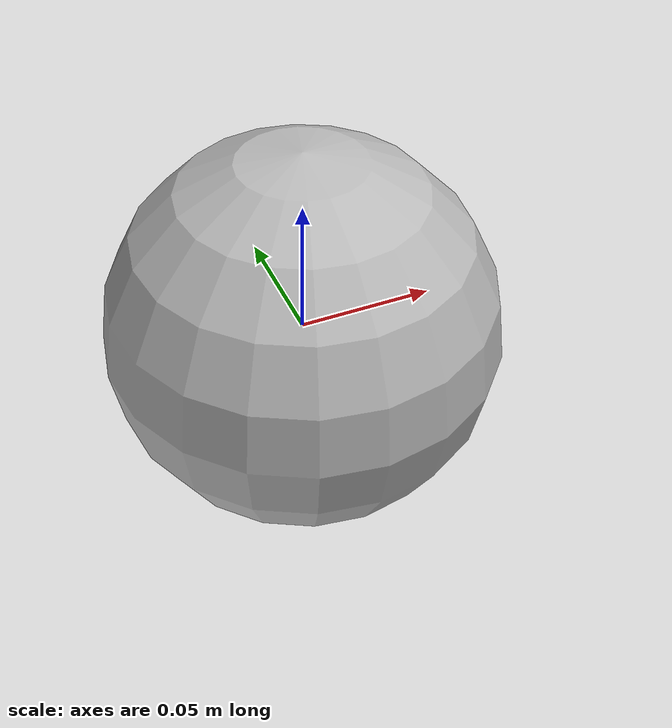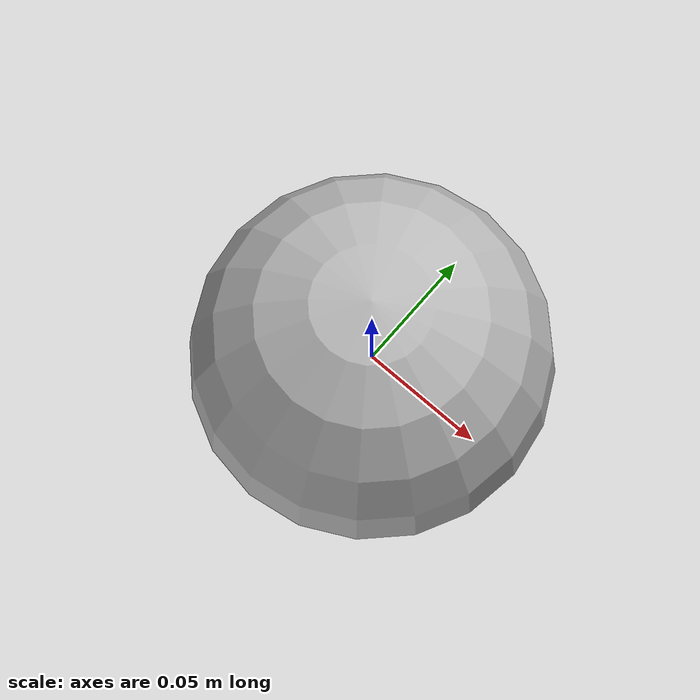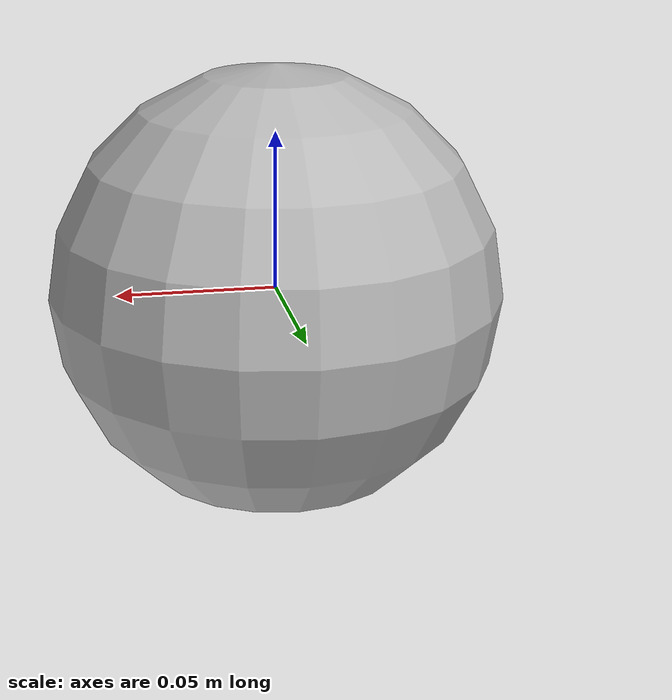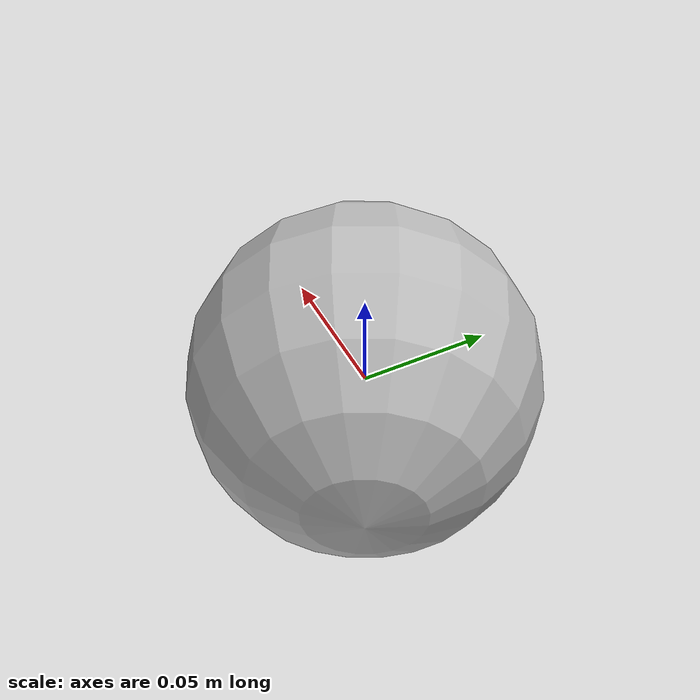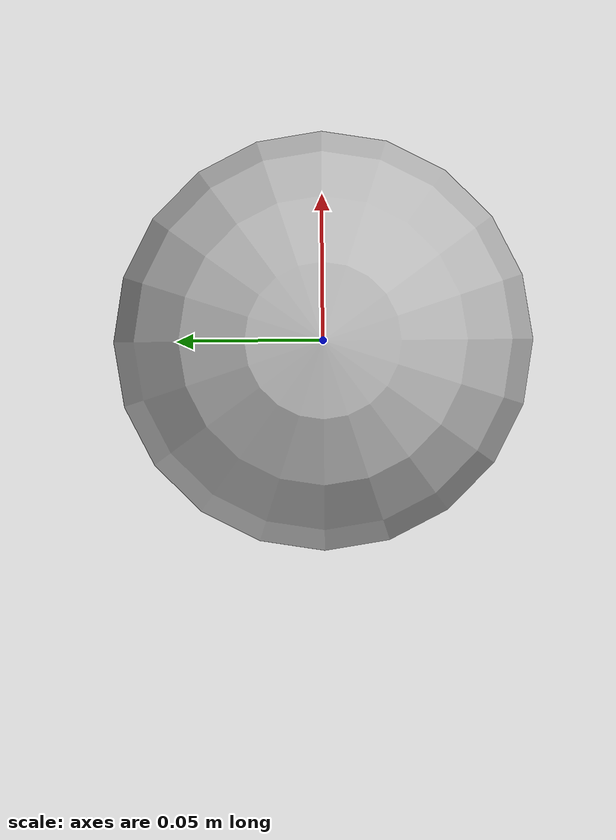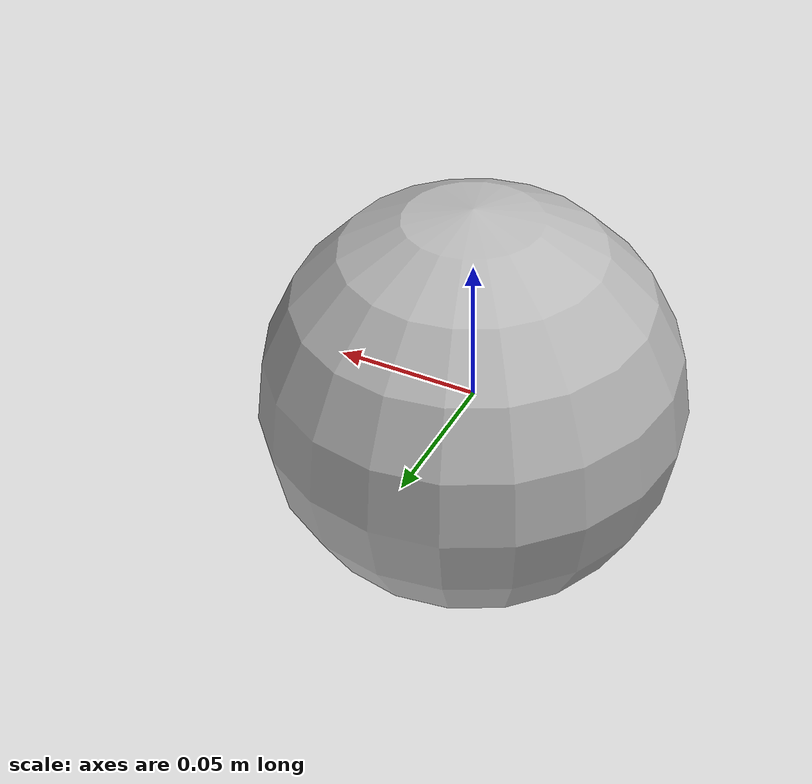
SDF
<?xml version='1.0'?>
<sdf version='1.6'>
  <model name='obj_leader'>
    <link name='frc2016_ball::link'>
      <pose frame=''>0 0 0 0 -0 0</pose>
      <inertial>
        <mass>0.213</mass>
        <inertia>
          <ixx>0.00322667</ixx>
          <ixy>0</ixy>
          <ixz>0</ixz>
          <iyy>0.00322667</iyy>
          <iyz>0</iyz>
          <izz>0.00322667</izz>
        </inertia>
      </inertial>
      <self_collide>0</self_collide>
      <kinematic>0</kinematic>
      <visual name='visual'>
        <geometry>
          <sphere>
            <radius>0.0706963</radius>
          </sphere>
        </geometry>
        <pose frame=''>0 0 0 0 -0 0</pose>
        <cast_shadows>1</cast_shadows>
        <transparency>0</transparency>
      </visual>
    </link>
    <static>0</static>
    <allow_auto_disable>1</allow_auto_disable>
  </model>
</sdf>
